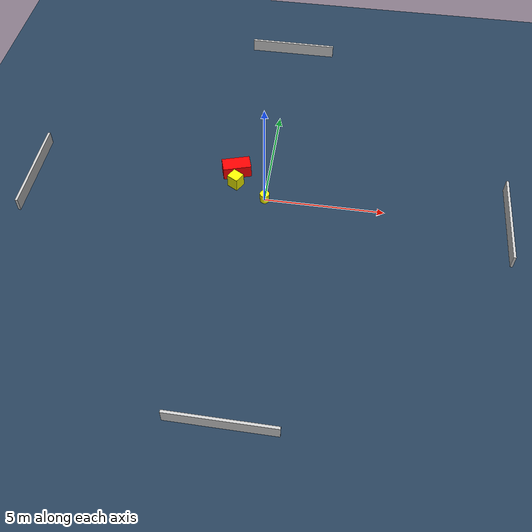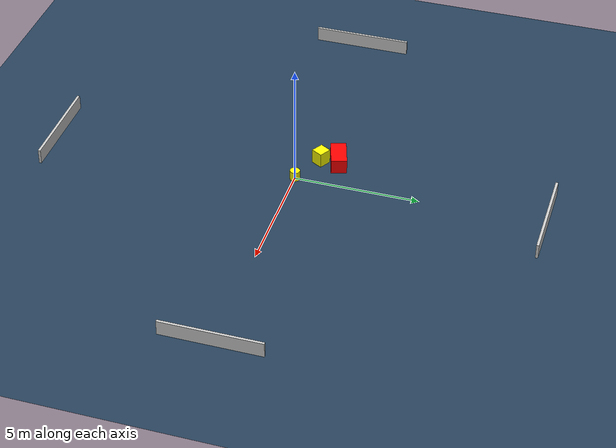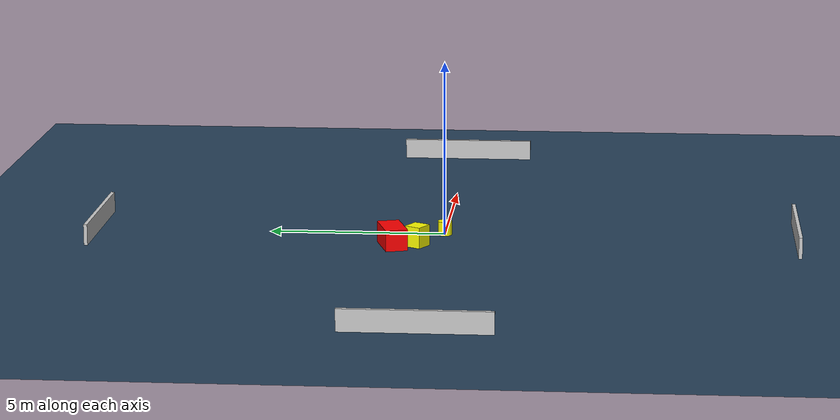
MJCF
<?xml version="1.0" ?>
<mujoco model="generated_environment">
  <option timestep="0.01" integrator="RK4" cone="elliptic"/>
  <default>
    <geom density="1"/>
  </default>
  <asset>
    <texture builtin="gradient" height="3072" name="skybox" rgb1="0.3 0.5 0.7" rgb2="0 0 0" type="skybox" width="512"/>
    <texture builtin="checker" height="300" name="groundplane" rgb1="0.2 0.3 0.4" rgb2="0.1 0.2 0.3" type="2d" width="300"/>
    <material name="groundplane" reflectance="0.2" texrepeat="5 5" texture="groundplane"/>
  </asset>
  <worldbody>
    <light dir="0 0 -1" directional="true" pos="0 0 1.5"/>
    <geom condim="3" friction="0.5 0.005 0.001" material="groundplane" name="floor" pos="0 0 0" size="0 0 0.05" type="plane"/>
    <body name="walls">
      <geom name="wall_1" condim="4" pos="-10.0 0.0 0.3" rgba="0.800000011920929 0.800000011920929 0.800000011920929 1.0" size="0.05 2.0 0.3" type="box"/>
      <geom name="wall_2" condim="4" pos="10.0 0.0 0.3" rgba="0.800000011920929 0.800000011920929 0.800000011920929 1.0" size="0.05 2.0 0.3" type="box"/>
      <geom name="wall_3" condim="4" pos="0.0 -10.0 0.3" rgba="0.800000011920929 0.800000011920929 0.800000011920929 1.0" size="2.0 0.05 0.3" type="box"/>
      <geom name="wall_4" condim="4" pos="0.0 10.0 0.3" rgba="0.800000011920929 0.800000011920929 0.800000011920929 1.0" size="2.0 0.05 0.3" type="box"/>
    </body>
    <body name="robot">
      <joint name="joint_x" type="slide" pos="0 0 0" axis="1 0 0"/>
      <joint name="joint_y" type="slide" pos="0 0 0" axis="0 1 0"/>
      <geom name="robot" type="cylinder" pos="0.0 0.0 0.2" size="0.2 0.2 0.0" mass="5.0" friction="1.0 0.005 0.0001" condim="4" rgba="1.0 1.0 0.0 1.0"/>
    </body>
    <body name="obstacle_1_movable">
      <geom name="obstacle_1_movable" condim="4" pos="-1.3451617543541794 0.6766871363766596 0.3" euler="0 0 60.27440055417741" friction="0.0 0.005 0.001" rgba="1.0 1.0 0.0 1.0" size="0.24016089019227835 0.2545312503767373 0.3" type="box" mass="0.1"/>
      <joint type="free"/>
    </body>
    <body name="obstacle_2_static">
      <geom name="obstacle_2_static" condim="4" pos="-1.4247297596038582 1.376065711431397 0.3" euler="0 0 287.3348600657486" friction="0.0 0.005 0.001" rgba="1.0 0.0 0.0 1.0" size="0.3145915265989761 0.5986564932280793 0.3" type="box"/>
    </body>
  </worldbody>
  <actuator>
    <motor name="actuator_x" joint="joint_x" gear="1" ctrlrange="-1 1"/>
    <motor name="actuator_y" joint="joint_y" gear="1" ctrlrange="-1 1"/>
  </actuator>
</mujoco>
